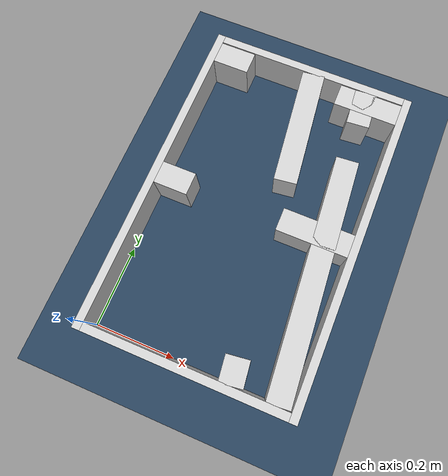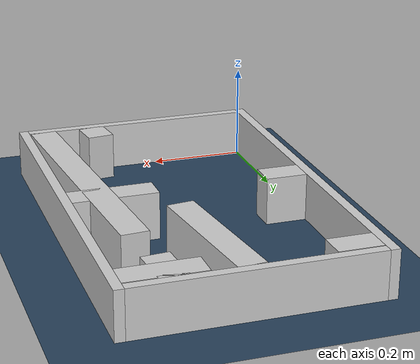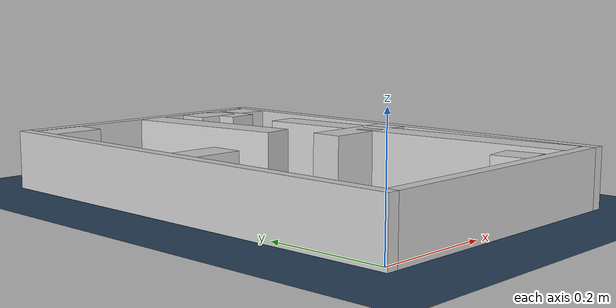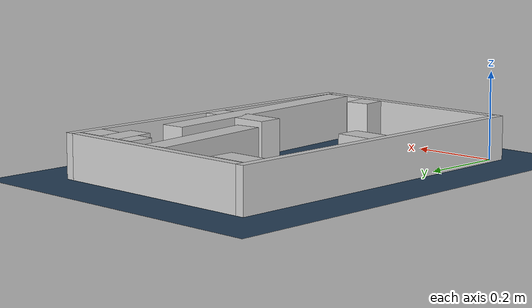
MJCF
<?xml version="1.0" ?>
<mujoco model="generated_real_template">
  <compiler angle="degree"/>
  <option timestep="0.002" integrator="implicitfast" iterations="100" cone="elliptic"/>
  <default>
    <geom density="1"/>
  </default>
  <asset>
    <texture builtin="gradient" height="3072" rgb1="0.3 0.5 0.7" rgb2="0 0 0" type="skybox" width="512"/>
    <texture builtin="checker" height="300" mark="edge" markrgb="0.8 0.8 0.8" name="groundplane" rgb1="0.2 0.3 0.4" rgb2="0.1 0.2 0.3" type="2d" width="300"/>
    <material name="groundplane" reflectance="0.2" texrepeat="5 5" texture="groundplane" texuniform="true"/>
  </asset>
  <worldbody>
    <light dir="0 0 -1" directional="true" pos="0 0 1.5"/>
    <geom name="floor" type="plane" condim="4" friction="0.5 0.005 0.001" material="groundplane" size="0 0 0.05"/>
    <body name="walls">
      <geom name="wall_boundary_left" type="box" condim="4" friction="1.0 0.005 0.0001" rgba="0.8 0.8 0.8 1" pos="-0.010000 0.387500 0.050000" euler="0 0 0.000000" size="0.010000 0.407500 0.050000"/>
      <geom name="wall_boundary_right" type="box" condim="4" friction="1.0 0.005 0.0001" rgba="0.8 0.8 0.8 1" pos="0.500000 0.387500 0.050000" euler="0 0 0.000000" size="0.010000 0.407500 0.050000"/>
      <geom name="wall_boundary_bottom" type="box" condim="4" friction="1.0 0.005 0.0001" rgba="0.8 0.8 0.8 1" pos="0.245000 -0.010000 0.050000" euler="0 0 0.000000" size="0.245000 0.010000 0.050000"/>
      <geom name="wall_boundary_top" type="box" condim="4" friction="1.0 0.005 0.0001" rgba="0.8 0.8 0.8 1" pos="0.245000 0.785000 0.050000" euler="0 0 0.000000" size="0.245000 0.010000 0.050000"/>
      <geom name="wall_inner_1_1" type="box" condim="4" friction="1.0 0.005 0.0001" rgba="0.8 0.8 0.8 1" pos="0.046172 0.744074 0.050000" euler="0 0 0.000000" size="0.046172 0.028500 0.050000"/>
      <geom name="wall_inner_1_2" type="box" condim="4" friction="1.0 0.005 0.0001" rgba="0.8 0.8 0.8 1" pos="0.409846 0.744074 0.050000" euler="0 0 0.000000" size="0.080154 0.028500 0.050000"/>
      <geom name="wall_inner_2_1" type="box" condim="4" friction="1.0 0.005 0.0001" rgba="0.8 0.8 0.8 1" pos="0.435564 0.292007 0.050000" euler="0 0 94.639110" size="0.292967 0.028500 0.050000"/>
      <geom name="wall_inner_2_2" type="box" condim="4" friction="1.0 0.005 0.0001" rgba="0.8 0.8 0.8 1" pos="0.400154 0.728377 0.050000" euler="0 0 94.639110" size="0.046776 0.028500 0.050000"/>
      <geom name="wall_inner_3_1" type="box" condim="4" friction="1.0 0.005 0.0001" rgba="0.8 0.8 0.8 1" pos="0.042987 0.383078 0.050000" euler="0 0 0.000000" size="0.042987 0.028500 0.050000"/>
      <geom name="wall_inner_3_2" type="box" condim="4" friction="1.0 0.005 0.0001" rgba="0.8 0.8 0.8 1" pos="0.401633 0.383078 0.050000" euler="0 0 0.000000" size="0.088367 0.028500 0.050000"/>
      <geom name="wall_inner_4_1" type="box" condim="4" friction="1.0 0.005 0.0001" rgba="0.8 0.8 0.8 1" pos="0.346917 0.030715 0.050000" euler="0 0 97.133263" size="0.030955 0.028500 0.050000"/>
      <geom name="wall_inner_4_2" type="box" condim="4" friction="1.0 0.005 0.0001" rgba="0.8 0.8 0.8 1" pos="0.272579 0.624724 0.050000" euler="0 0 97.133263" size="0.151448 0.028500 0.050000"/>
    </body>
  </worldbody>
</mujoco>
